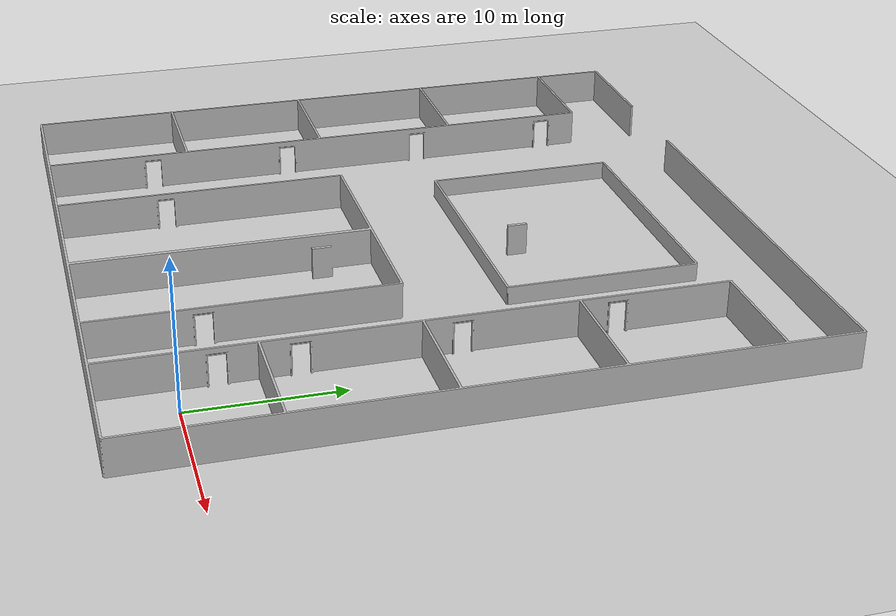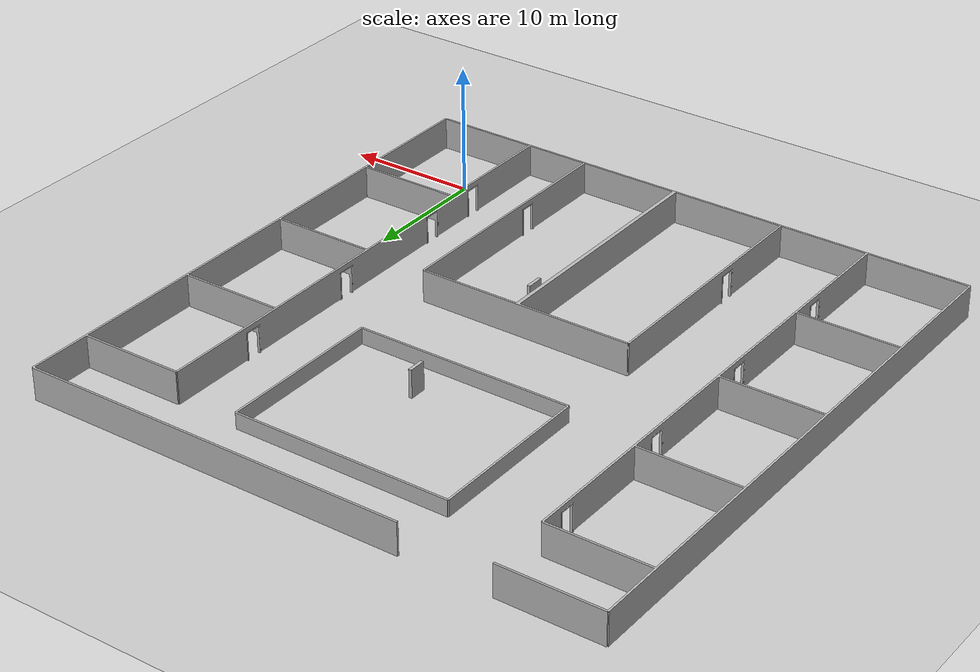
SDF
<?xml version="1.0"?>
<sdf version="1.6">
  <world name="default">

    <include>
      <uri>model://ground_plane</uri>
    </include>

    <include>
      <uri>model://sun</uri>
    </include>

    <scene>
      <shadows>false</shadows>
    </scene>

    <gui fullscreen='0'>
      <camera name='user_camera'>
        <pose frame=''>0.319654 -0.235002 9.29441 0 1.5138 0.009599</pose>
        <view_controller>orbit</view_controller>
        <projection_type>perspective</projection_type>
      </camera>
    </gui>

    <physics type="ode">
      <real_time_update_rate>1000.0</real_time_update_rate>
      <max_step_size>0.001</max_step_size>
      <real_time_factor>1</real_time_factor>
      <ode>
        <solver>
          <type>quick</type>
          <iters>150</iters>
          <precon_iters>0</precon_iters>
          <sor>1.400000</sor>
          <use_dynamic_moi_rescaling>1</use_dynamic_moi_rescaling>
        </solver>
        <constraints>
          <cfm>0.00001</cfm>
          <erp>0.2</erp>
          <contact_max_correcting_vel>2000.000000</contact_max_correcting_vel>
          <contact_surface_layer>0.01000</contact_surface_layer>
        </constraints>
      </ode>
    </physics>

    <model name="btu_real">
      <static>1</static>
      <include>
        <uri>model://btu_real</uri>
      </include>
    </model>

  </world>
</sdf>

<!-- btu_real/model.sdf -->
<sdf version='1.6'>
  <model name='btu_real'>
    <pose>0 0 0 0 0 0</pose>
    <static>true</static>
      <link name='link_btu'>
        <visual name="visual">
          <geometry>
            <mesh>
              <uri>model://btu_real/meshes/btu_big_1.stl</uri>
            </mesh>
          </geometry>
        </visual>
        <collision name='collision'>
          <geometry>
            <mesh>
              <uri>model://btu_real/meshes/btu_big_1.stl</uri>
            </mesh>
          </geometry>
        </collision>
      </link>
  </model>
</sdf>
